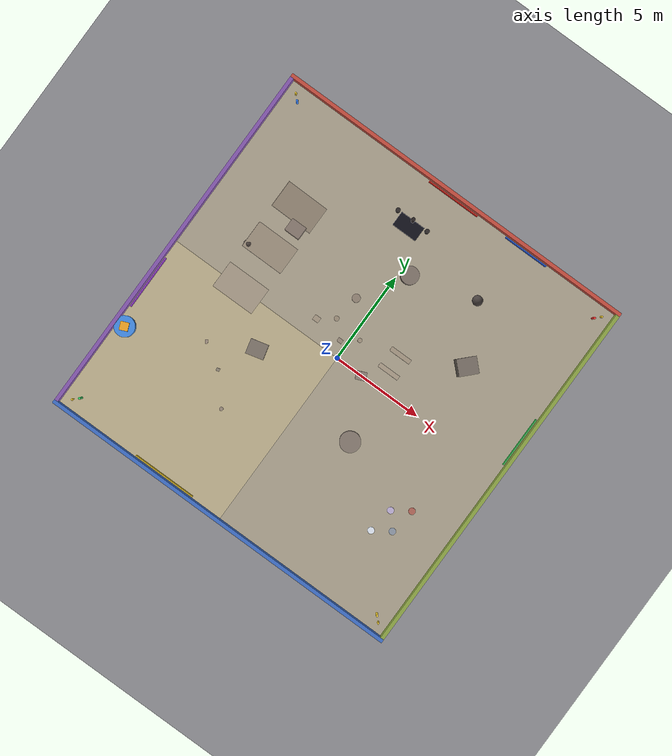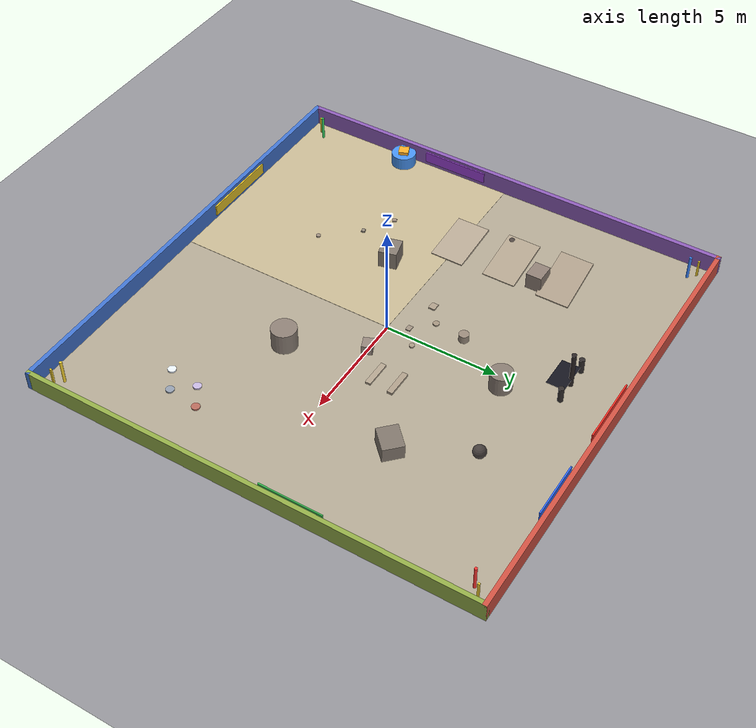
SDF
<?xml version="1.0" ?>
<sdf version="1.11">
  <world name="earth_arena_expo_20x20">

    <physics name="1ms" type="dartsim">
      <max_step_size>0.001</max_step_size>
      <real_time_factor>1.0</real_time_factor>
      <real_time_update_rate>1000</real_time_update_rate>
    </physics>

    <plugin filename="gz-sim-physics-system" name="gz::sim::systems::Physics"/>
    <plugin filename="gz-sim-user-commands-system" name="gz::sim::systems::UserCommands"/>
    <plugin filename="gz-sim-scene-broadcaster-system" name="gz::sim::systems::SceneBroadcaster"/>
    <plugin filename="gz-sim-contact-system" name="gz::sim::systems::Contact"/>
    <plugin filename="gz-sim-sensors-system" name="gz::sim::systems::Sensors">
      <render_engine>ogre2</render_engine>
    </plugin>
    <plugin filename="gz-sim-imu-system" name="gz::sim::systems::Imu"/>

    <gravity>0 0 -9.81</gravity>

    <scene>
      <ambient>0.50 0.48 0.46 1</ambient>
      <background>0.62 0.78 0.92 1</background>
      <shadows>true</shadows>
      <grid>false</grid>
      <sky/>
    </scene>

    <light type="directional" name="sun">
      <cast_shadows>true</cast_shadows>
      <pose>0 0 12 0 0 0</pose>
      <diffuse>1.0 0.96 0.90 1</diffuse>
      <specular>0.45 0.45 0.45 1</specular>
      <direction>-0.35 0.25 -0.90</direction>
    </light>

    <!-- 50 x 50 m outer exhibition pad -->
    <model name="expo_ground_50x50">
      <static>true</static>
      <link name="link">
        <collision name="collision">
          <geometry>
            <plane><normal>0 0 1</normal><size>50 50</size></plane>
          </geometry>
          <surface>
            <friction>
              <ode><mu>1.1</mu><mu2>1.1</mu2></ode>
            </friction>
            <contact>
              <ode><kp>1000000.0</kp><kd>100.0</kd><min_depth>0.001</min_depth></ode>
            </contact>
          </surface>
        </collision>
        <visual name="visual">
          <geometry>
            <plane><normal>0 0 1</normal><size>50 50</size></plane>
          </geometry>
          <material>
            <ambient>0.42 0.42 0.44 1</ambient>
            <diffuse>0.58 0.58 0.60 1</diffuse>
            <specular>0.06 0.06 0.06 1</specular>
          </material>
        </visual>
      </link>
    </model>

    <!-- ~10 x 10 m regolith / sand patch (SW quadrant) -->
    <model name="expo_regolith_patch_10x10">
      <static>true</static>
      <pose>-5.0 -5.0 0.01 0 0 0</pose>
      <link name="link">
        <collision name="collision">
          <geometry><box><size>10.0 10.0 0.02</size></box></geometry>
          <surface>
            <friction>
              <ode><mu>1.15</mu><mu2>1.15</mu2></ode>
            </friction>
          </surface>
        </collision>
        <visual name="visual">
          <geometry><box><size>10.0 10.0 0.02</size></box></geometry>
          <material>
            <ambient>0.62 0.58 0.48 1</ambient>
            <diffuse>0.78 0.72 0.58 1</diffuse>
            <specular>0.04 0.04 0.04 1</specular>
          </material>
        </visual>
      </link>
    </model>

    <!-- Inner arena floor tint (visual only) -->
    <model name="arena_floor_tint_20x20">
      <static>true</static>
      <pose>0 0 0.005 0 0 0</pose>
      <link name="link">
        <visual name="visual">
          <geometry><box><size>20.0 20.0 0.01</size></box></geometry>
          <material>
            <ambient>0.55 0.52 0.46 1</ambient>
            <diffuse>0.70 0.66 0.58 1</diffuse>
          </material>
        </visual>
      </link>
    </model>

    <!-- Arena walls (20 x 20 m, h ~0.85 m, t 0.2 m) -->
    <model name="arena_wall_north">
      <static>true</static>
      <pose>0 10.1 0.425 0 0 0</pose>
      <link name="link">
        <collision name="collision"><geometry><box><size>20.4 0.2 0.85</size></box></geometry></collision>
        <visual name="visual">
          <geometry><box><size>20.4 0.2 0.85</size></box></geometry>
          <material><ambient>0.55 0.22 0.18 1</ambient><diffuse>0.82 0.32 0.26 1</diffuse></material>
        </visual>
      </link>
    </model>
    <model name="arena_wall_south">
      <static>true</static>
      <pose>0 -10.1 0.425 0 0 0</pose>
      <link name="link">
        <collision name="collision"><geometry><box><size>20.4 0.2 0.85</size></box></geometry></collision>
        <visual name="visual">
          <geometry><box><size>20.4 0.2 0.85</size></box></geometry>
          <material><ambient>0.18 0.32 0.58 1</ambient><diffuse>0.26 0.46 0.82 1</diffuse></material>
        </visual>
      </link>
    </model>
    <model name="arena_wall_east">
      <static>true</static>
      <pose>10.1 0 0.425 0 0 0</pose>
      <link name="link">
        <collision name="collision"><geometry><box><size>0.2 20.4 0.85</size></box></geometry></collision>
        <visual name="visual">
          <geometry><box><size>0.2 20.4 0.85</size></box></geometry>
          <material><ambient>0.42 0.48 0.20 1</ambient><diffuse>0.58 0.68 0.28 1</diffuse></material>
        </visual>
      </link>
    </model>
    <model name="arena_wall_west">
      <static>true</static>
      <pose>-10.1 0 0.425 0 0 0</pose>
      <link name="link">
        <collision name="collision"><geometry><box><size>0.2 20.4 0.85</size></box></geometry></collision>
        <visual name="visual">
          <geometry><box><size>0.2 20.4 0.85</size></box></geometry>
          <material><ambient>0.40 0.26 0.52 1</ambient><diffuse>0.55 0.36 0.72 1</diffuse></material>
        </visual>
      </link>
    </model>

    <!-- Colored wall panels (RTAB features) -->
    <model name="wall_panel_n_red">
      <static>true</static>
      <pose>0 9.88 0.55 0 0 0</pose>
      <link name="link">
        <collision name="collision"><geometry><box><size>3.0 0.06 0.5</size></box></geometry></collision>
        <visual name="visual">
          <geometry><box><size>3.0 0.06 0.5</size></box></geometry>
          <material><ambient>0.75 0.12 0.10 1</ambient><diffuse>0.95 0.18 0.14 1</diffuse></material>
        </visual>
      </link>
    </model>
    <model name="wall_panel_n_blue">
      <static>true</static>
      <pose>4.5 9.88 0.55 0 0 0</pose>
      <link name="link">
        <visual name="visual">
          <geometry><box><size>2.5 0.06 0.5</size></box></geometry>
          <material><ambient>0.12 0.28 0.72 1</ambient><diffuse>0.18 0.40 0.95 1</diffuse></material>
        </visual>
      </link>
    </model>
    <model name="wall_panel_s_yellow">
      <static>true</static>
      <pose>-3.5 -9.88 0.55 0 0 0</pose>
      <link name="link">
        <visual name="visual">
          <geometry><box><size>3.5 0.06 0.5</size></box></geometry>
          <material><ambient>0.72 0.62 0.10 1</ambient><diffuse>0.92 0.78 0.16 1</diffuse></material>
        </visual>
      </link>
    </model>
    <model name="wall_panel_e_green">
      <static>true</static>
      <pose>9.88 2.0 0.55 0 0 0</pose>
      <link name="link">
        <visual name="visual">
          <geometry><box><size>0.06 2.8 0.5</size></box></geometry>
          <material><ambient>0.15 0.55 0.22 1</ambient><diffuse>0.22 0.75 0.32 1</diffuse></material>
        </visual>
      </link>
    </model>
    <model name="wall_panel_w_purple">
      <static>true</static>
      <pose>-9.88 -2.5 0.55 0 0 0</pose>
      <link name="link">
        <visual name="visual">
          <geometry><box><size>0.06 3.0 0.5</size></box></geometry>
          <material><ambient>0.45 0.18 0.62 1</ambient><diffuse>0.62 0.26 0.85 1</diffuse></material>
        </visual>
      </link>
    </model>

    <!-- Landmark poles (corners, collision for lidar) -->
    <model name="landmark_pole_ne">
      <static>true</static>
      <pose>9.2 9.2 0.55 0 0 0</pose>
      <link name="link">
        <collision name="collision"><geometry><cylinder><radius>0.06</radius><length>1.1</length></cylinder></geometry></collision>
        <visual name="visual">
          <geometry><cylinder><radius>0.06</radius><length>1.1</length></cylinder></geometry>
          <material><ambient>0.85 0.15 0.15 1</ambient><diffuse>1.0 0.22 0.20 1</diffuse></material>
        </visual>
      </link>
    </model>
    <model name="landmark_pole_nw">
      <static>true</static>
      <pose>-9.2 9.2 0.55 0 0 0</pose>
      <link name="link">
        <collision name="collision"><geometry><cylinder><radius>0.06</radius><length>1.1</length></cylinder></geometry></collision>
        <visual name="visual">
          <geometry><cylinder><radius>0.06</radius><length>1.1</length></cylinder></geometry>
          <material><ambient>0.15 0.40 0.85 1</ambient><diffuse>0.22 0.52 1.0 1</diffuse></material>
        </visual>
      </link>
    </model>
    <model name="landmark_pole_se">
      <static>true</static>
      <pose>9.2 -9.2 0.55 0 0 0</pose>
      <link name="link">
        <collision name="collision"><geometry><cylinder><radius>0.06</radius><length>1.1</length></cylinder></geometry></collision>
        <visual name="visual">
          <geometry><cylinder><radius>0.06</radius><length>1.1</length></cylinder></geometry>
          <material><ambient>0.85 0.70 0.12 1</ambient><diffuse>1.0 0.85 0.20 1</diffuse></material>
        </visual>
      </link>
    </model>
    <model name="landmark_pole_sw">
      <static>true</static>
      <pose>-9.2 -9.2 0.55 0 0 0</pose>
      <link name="link">
        <collision name="collision"><geometry><cylinder><radius>0.06</radius><length>1.1</length></cylinder></geometry></collision>
        <visual name="visual">
          <geometry><cylinder><radius>0.06</radius><length>1.1</length></cylinder></geometry>
          <material><ambient>0.15 0.62 0.28 1</ambient><diffuse>0.22 0.82 0.38 1</diffuse></material>
        </visual>
      </link>
    </model>

    <!-- BU04 UWB anchors (sim only): static visuals near arena corners (20x20 in [-10,10]). -->
    <model name="bu04_anchor_bs0">
      <static>true</static>
      <pose>-9.5 -9.5 0.40 0 0 0</pose>
      <link name="link">
        <visual name="visual">
          <geometry><box><size>0.08 0.08 0.80</size></box></geometry>
          <material><ambient>1.0 0.75 0.10 1</ambient><diffuse>1.0 0.85 0.20 1</diffuse></material>
        </visual>
      </link>
    </model>
    <model name="bu04_anchor_bs1">
      <static>true</static>
      <pose>-9.5 9.5 0.40 0 0 0</pose>
      <link name="link">
        <visual name="visual">
          <geometry><box><size>0.08 0.08 0.80</size></box></geometry>
          <material><ambient>1.0 0.75 0.10 1</ambient><diffuse>1.0 0.85 0.20 1</diffuse></material>
        </visual>
      </link>
    </model>
    <model name="bu04_anchor_bs2">
      <static>true</static>
      <pose>9.5 -9.5 0.40 0 0 0</pose>
      <link name="link">
        <visual name="visual">
          <geometry><box><size>0.08 0.08 0.80</size></box></geometry>
          <material><ambient>1.0 0.75 0.10 1</ambient><diffuse>1.0 0.85 0.20 1</diffuse></material>
        </visual>
      </link>
    </model>
    <model name="bu04_anchor_bs3">
      <static>true</static>
      <pose>9.5 9.5 0.40 0 0 0</pose>
      <link name="link">
        <visual name="visual">
          <geometry><box><size>0.08 0.08 0.80</size></box></geometry>
          <material><ambient>1.0 0.75 0.10 1</ambient><diffuse>1.0 0.85 0.20 1</diffuse></material>
        </visual>
      </link>
    </model>

    <!-- Hub / base station along west wall (~3 m from default spawn at -7.5,-7.5) -->
    <model name="hub_base">
      <static>true</static>
      <pose>-9.55 -5.0 0.30 0 0 0.4</pose>
      <link name="link">
        <collision name="collision"><geometry><cylinder><radius>0.35</radius><length>0.60</length></cylinder></geometry></collision>
        <visual name="base">
          <geometry><cylinder><radius>0.55</radius><length>0.60</length></cylinder></geometry>
          <material><ambient>0.20 0.45 0.75 1</ambient><diffuse>0.28 0.58 0.95 1</diffuse></material>
        </visual>
        <visual name="top">
          <pose>0 0 0.38 0 0 0</pose>
          <geometry><box><size>0.45 0.45 0.16</size></box></geometry>
          <material><ambient>0.85 0.55 0.10 1</ambient><diffuse>1.0 0.68 0.15 1</diffuse></material>
        </visual>
      </link>
    </model>

    <!-- Easy exploration zone: sparse small rocks (away from spawn) -->
    <model name="easy_rock_01">
      <static>true</static>
      <pose>-4.5 -4.0 0.05 0 0 0.2</pose>
      <link name="link">
        <collision name="collision"><geometry><box><size>0.18 0.16 0.10</size></box></geometry></collision>
        <visual name="visual">
          <geometry><box><size>0.18 0.16 0.10</size></box></geometry>
          <material><ambient>0.45 0.42 0.38 1</ambient><diffuse>0.58 0.54 0.48 1</diffuse></material>
        </visual>
      </link>
    </model>
    <model name="easy_rock_02">
      <static>true</static>
      <pose>-3.2 -5.5 0.04 0 0 0</pose>
      <link name="link">
        <collision name="collision"><geometry><cylinder><radius>0.10</radius><length>0.08</length></cylinder></geometry></collision>
        <visual name="visual">
          <geometry><cylinder><radius>0.10</radius><length>0.08</length></cylinder></geometry>
          <material><ambient>0.48 0.44 0.40 1</ambient><diffuse>0.62 0.56 0.50 1</diffuse></material>
        </visual>
      </link>
    </model>
    <model name="easy_rock_03">
      <static>true</static>
      <pose>-5.8 -3.2 0.045 0 0 0.5</pose>
      <link name="link">
        <collision name="collision"><geometry><box><size>0.14 0.20 0.09</size></box></geometry></collision>
        <visual name="visual">
          <geometry><box><size>0.14 0.20 0.09</size></box></geometry>
          <material><ambient>0.50 0.46 0.42 1</ambient><diffuse>0.65 0.58 0.52 1</diffuse></material>
        </visual>
      </link>
    </model>

    <!-- Rocker-bogie test: small humps + low thresholds -->
    <model name="hump_01">
      <static>true</static>
      <pose>-2.0 1.0 0.04 0 0 0</pose>
      <link name="link">
        <collision name="collision"><geometry><box><size>0.35 0.30 0.08</size></box></geometry></collision>
        <visual name="visual">
          <geometry><box><size>0.35 0.30 0.08</size></box></geometry>
          <material><ambient>0.52 0.48 0.42 1</ambient><diffuse>0.68 0.62 0.54 1</diffuse></material>
        </visual>
      </link>
    </model>
    <model name="hump_02">
      <static>true</static>
      <pose>-1.2 1.6 0.035 0 0 0.3</pose>
      <link name="link">
        <collision name="collision"><geometry><cylinder><radius>0.14</radius><length>0.07</length></cylinder></geometry></collision>
        <visual name="visual">
          <geometry><cylinder><radius>0.14</radius><length>0.07</length></cylinder></geometry>
          <material><ambient>0.50 0.46 0.40 1</ambient><diffuse>0.64 0.58 0.50 1</diffuse></material>
        </visual>
      </link>
    </model>
    <model name="hump_03">
      <static>true</static>
      <pose>-0.4 0.8 0.03 0 0 0</pose>
      <link name="link">
        <collision name="collision"><geometry><box><size>0.28 0.22 0.06</size></box></geometry></collision>
        <visual name="visual">
          <geometry><box><size>0.28 0.22 0.06</size></box></geometry>
          <material><ambient>0.48 0.44 0.40 1</ambient><diffuse>0.62 0.56 0.50 1</diffuse></material>
        </visual>
      </link>
    </model>
    <model name="hump_04">
      <static>true</static>
      <pose>0.4 1.4 0.04 0 0 0.6</pose>
      <link name="link">
        <collision name="collision"><geometry><cylinder><radius>0.12</radius><length>0.08</length></cylinder></geometry></collision>
        <visual name="visual">
          <geometry><cylinder><radius>0.12</radius><length>0.08</length></cylinder></geometry>
          <material><ambient>0.51 0.47 0.41 1</ambient><diffuse>0.66 0.60 0.52 1</diffuse></material>
        </visual>
      </link>
    </model>
    <model name="threshold_01">
      <static>true</static>
      <pose>2.5 1.0 0.05 0 0 0</pose>
      <link name="link">
        <collision name="collision"><geometry><box><size>1.2 0.25 0.10</size></box></geometry></collision>
        <visual name="visual">
          <geometry><box><size>1.2 0.25 0.10</size></box></geometry>
          <material><ambient>0.55 0.50 0.44 1</ambient><diffuse>0.70 0.64 0.56 1</diffuse></material>
        </visual>
      </link>
    </model>
    <model name="threshold_02">
      <static>true</static>
      <pose>2.5 2.0 0.06 0 0 0</pose>
      <link name="link">
        <collision name="collision"><geometry><box><size>1.2 0.25 0.12</size></box></geometry></collision>
        <visual name="visual">
          <geometry><box><size>1.2 0.25 0.12</size></box></geometry>
          <material><ambient>0.53 0.48 0.42 1</ambient><diffuse>0.68 0.62 0.54 1</diffuse></material>
        </visual>
      </link>
    </model>

    <!-- Demo ramps (west side, optional paths) pitch about y-axis -->
    <model name="ramp_low">
      <static>true</static>
      <pose>-6.0 0.0 0.12 0 0.087 0</pose>
      <link name="link">
        <collision name="collision"><geometry><box><size>2.4 1.5 0.10</size></box></geometry></collision>
        <visual name="visual">
          <geometry><box><size>2.4 1.5 0.10</size></box></geometry>
          <material><ambient>0.58 0.54 0.48 1</ambient><diffuse>0.72 0.66 0.58 1</diffuse></material>
        </visual>
      </link>
    </model>
    <model name="ramp_medium">
      <static>true</static>
      <pose>-6.0 2.5 0.22 0 0.175 0</pose>
      <link name="link">
        <collision name="collision"><geometry><box><size>2.4 1.5 0.10</size></box></geometry></collision>
        <visual name="visual">
          <geometry><box><size>2.4 1.5 0.10</size></box></geometry>
          <material><ambient>0.56 0.52 0.46 1</ambient><diffuse>0.70 0.64 0.56 1</diffuse></material>
        </visual>
      </link>
    </model>
    <model name="ramp_high">
      <static>true</static>
      <pose>-6.0 5.0 0.34 0 0.262 0</pose>
      <link name="link">
        <collision name="collision"><geometry><box><size>2.4 1.5 0.10</size></box></geometry></collision>
        <visual name="visual">
          <geometry><box><size>2.4 1.5 0.10</size></box></geometry>
          <material><ambient>0.54 0.50 0.44 1</ambient><diffuse>0.68 0.62 0.54 1</diffuse></material>
        </visual>
      </link>
    </model>

    <!-- Large Nav2 obstacles (wide passages >= ~1.5 m) -->
    <model name="large_rock_01">
      <static>true</static>
      <pose>-3.5 -2.0 0.42 0 0 0.25</pose>
      <link name="link">
        <collision name="collision"><geometry><box><size>0.95 0.80 0.84</size></box></geometry></collision>
        <visual name="visual">
          <geometry><box><size>0.95 0.80 0.84</size></box></geometry>
          <material><ambient>0.38 0.35 0.32 1</ambient><diffuse>0.52 0.48 0.44 1</diffuse></material>
        </visual>
      </link>
    </model>
    <model name="large_rock_02">
      <static>true</static>
      <pose>3.0 -3.0 0.48 0 0 0.5</pose>
      <link name="link">
        <collision name="collision"><geometry><cylinder><radius>0.55</radius><length>0.96</length></cylinder></geometry></collision>
        <visual name="visual">
          <geometry><cylinder><radius>0.55</radius><length>0.96</length></cylinder></geometry>
          <material><ambient>0.40 0.36 0.33 1</ambient><diffuse>0.55 0.50 0.46 1</diffuse></material>
        </visual>
      </link>
    </model>
    <model name="large_rock_03">
      <static>true</static>
      <pose>5.5 3.5 0.40 0 0.1 0.8</pose>
      <link name="link">
        <collision name="collision"><geometry><box><size>1.05 0.90 0.80</size></box></geometry></collision>
        <visual name="visual">
          <geometry><box><size>1.05 0.90 0.80</size></box></geometry>
          <material><ambient>0.37 0.34 0.31 1</ambient><diffuse>0.50 0.46 0.42 1</diffuse></material>
        </visual>
      </link>
    </model>
    <model name="block_obstacle_01">
      <static>true</static>
      <pose>-5.5 4.0 0.38 0 0 0</pose>
      <link name="link">
        <collision name="collision"><geometry><box><size>0.85 0.70 0.76</size></box></geometry></collision>
        <visual name="visual">
          <geometry><box><size>0.85 0.70 0.76</size></box></geometry>
          <material><ambient>0.42 0.38 0.35 1</ambient><diffuse>0.56 0.50 0.46 1</diffuse></material>
        </visual>
      </link>
    </model>
    <model name="cylinder_obstacle_01">
      <static>true</static>
      <pose>0.5 5.5 0.44 0 0 0</pose>
      <link name="link">
        <collision name="collision"><geometry><cylinder><radius>0.48</radius><length>0.88</length></cylinder></geometry></collision>
        <visual name="visual">
          <geometry><cylinder><radius>0.48</radius><length>0.88</length></cylinder></geometry>
          <material><ambient>0.39 0.36 0.33 1</ambient><diffuse>0.53 0.48 0.44 1</diffuse></material>
        </visual>
      </link>
    </model>

    <!-- Mid-field rocks for visual variety -->
    <model name="mid_rock_01">
      <static>true</static>
      <pose>1.5 0.0 0.22 0 0 0.4</pose>
      <link name="link">
        <collision name="collision"><geometry><box><size>0.55 0.45 0.44</size></box></geometry></collision>
        <visual name="visual">
          <geometry><box><size>0.55 0.45 0.44</size></box></geometry>
          <material><ambient>0.44 0.40 0.36 1</ambient><diffuse>0.58 0.52 0.48 1</diffuse></material>
        </visual>
      </link>
    </model>
    <model name="mid_rock_02">
      <static>true</static>
      <pose>-1.0 3.0 0.18 0 0 0</pose>
      <link name="link">
        <collision name="collision"><geometry><cylinder><radius>0.22</radius><length>0.36</length></cylinder></geometry></collision>
        <visual name="visual">
          <geometry><cylinder><radius>0.22</radius><length>0.36</length></cylinder></geometry>
          <material><ambient>0.46 0.42 0.38 1</ambient><diffuse>0.60 0.54 0.48 1</diffuse></material>
        </visual>
      </link>
    </model>

    <!-- Sample markers (visual + low collision) -->
    <model name="sample_aluminium">
      <static>true</static>
      <pose>6.5 -6.0 0.04 0 0 0</pose>
      <link name="link">
        <collision name="collision"><geometry><cylinder><radius>0.18</radius><length>0.08</length></cylinder></geometry></collision>
        <visual name="visual">
          <geometry><cylinder><radius>0.18</radius><length>0.08</length></cylinder></geometry>
          <material><ambient>0.75 0.78 0.82 1</ambient><diffuse>0.92 0.95 1.0 1</diffuse></material>
        </visual>
      </link>
    </model>
    <model name="sample_steel">
      <static>true</static>
      <pose>7.4 -5.4 0.04 0 0 0</pose>
      <link name="link">
        <collision name="collision"><geometry><cylinder><radius>0.18</radius><length>0.08</length></cylinder></geometry></collision>
        <visual name="visual">
          <geometry><cylinder><radius>0.18</radius><length>0.08</length></cylinder></geometry>
          <material><ambient>0.45 0.48 0.52 1</ambient><diffuse>0.58 0.62 0.68 1</diffuse></material>
        </visual>
      </link>
    </model>
    <model name="sample_titanium">
      <static>true</static>
      <pose>6.7 -4.6 0.04 0 0 0</pose>
      <link name="link">
        <collision name="collision"><geometry><cylinder><radius>0.18</radius><length>0.08</length></cylinder></geometry></collision>
        <visual name="visual">
          <geometry><cylinder><radius>0.18</radius><length>0.08</length></cylinder></geometry>
          <material><ambient>0.62 0.58 0.70 1</ambient><diffuse>0.78 0.72 0.88 1</diffuse></material>
        </visual>
      </link>
    </model>
    <model name="sample_iron">
      <static>true</static>
      <pose>7.6 -4.0 0.04 0 0 0</pose>
      <link name="link">
        <collision name="collision"><geometry><cylinder><radius>0.18</radius><length>0.08</length></cylinder></geometry></collision>
        <visual name="visual">
          <geometry><cylinder><radius>0.18</radius><length>0.08</length></cylinder></geometry>
          <material><ambient>0.55 0.32 0.28 1</ambient><diffuse>0.72 0.42 0.36 1</diffuse></material>
        </visual>
      </link>
    </model>

    <!-- Lavatube mock (visual only, north side — off main routes) -->
    <model name="lava_tube_mock_arch">
      <static>true</static>
      <pose>-1.0 7.8 0.35 0 0 0</pose>
      <link name="link">
        <visual name="arch_left">
          <pose>-0.9 0 0 0 0 0</pose>
          <geometry><cylinder><radius>0.12</radius><length>0.70</length></cylinder></geometry>
          <material><ambient>0.12 0.10 0.10 1</ambient><diffuse>0.20 0.18 0.18 1</diffuse></material>
        </visual>
        <visual name="arch_right">
          <pose>0.9 0 0 0 0 0</pose>
          <geometry><cylinder><radius>0.12</radius><length>0.70</length></cylinder></geometry>
          <material><ambient>0.12 0.10 0.10 1</ambient><diffuse>0.20 0.18 0.18 1</diffuse></material>
        </visual>
        <visual name="arch_top">
          <pose>0 0 0.55 0 0 1.5708</pose>
          <geometry><cylinder><radius>0.10</radius><length>1.70</length></cylinder></geometry>
          <material><ambient>0.10 0.08 0.08 1</ambient><diffuse>0.18 0.15 0.15 1</diffuse></material>
        </visual>
        <visual name="opening">
          <pose>0 -0.35 0.08 0 0 0</pose>
          <geometry><box><size>1.4 0.8 0.02</size></box></geometry>
          <material><ambient>0.05 0.05 0.08 1</ambient><diffuse>0.08 0.08 0.12 1</diffuse></material>
        </visual>
      </link>
    </model>

    <!-- Dark contrast boulders for camera features -->
    <model name="contrast_boulder_01">
      <static>true</static>
      <pose>4.0 6.5 0.28 0 0 0.2</pose>
      <link name="link">
        <collision name="collision"><geometry><sphere><radius>0.28</radius></sphere></geometry></collision>
        <visual name="visual">
          <geometry><sphere><radius>0.28</radius></sphere></geometry>
          <material><ambient>0.18 0.16 0.15 1</ambient><diffuse>0.28 0.25 0.24 1</diffuse></material>
        </visual>
      </link>
    </model>
    <model name="contrast_boulder_02">
      <static>true</static>
      <pose>-7.0 2.0 0.24 0 0 0</pose>
      <link name="link">
        <collision name="collision"><geometry><sphere><radius>0.24</radius></sphere></geometry></collision>
        <visual name="visual">
          <geometry><sphere><radius>0.24</radius></sphere></geometry>
          <material><ambient>0.22 0.20 0.18 1</ambient><diffuse>0.32 0.28 0.26 1</diffuse></material>
        </visual>
      </link>
    </model>

  </world>
</sdf>
